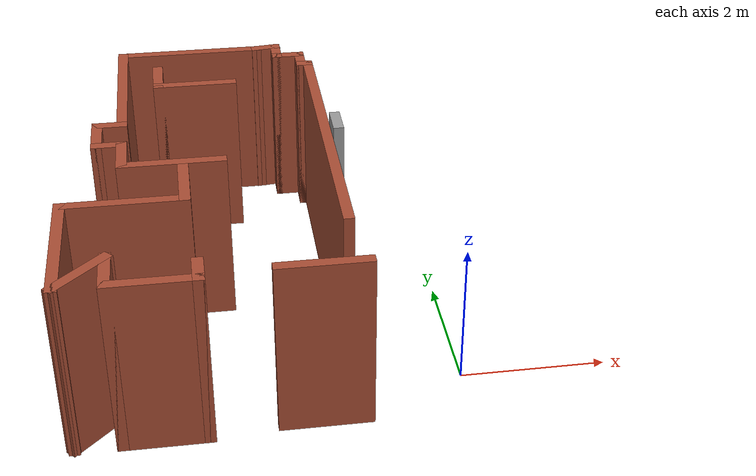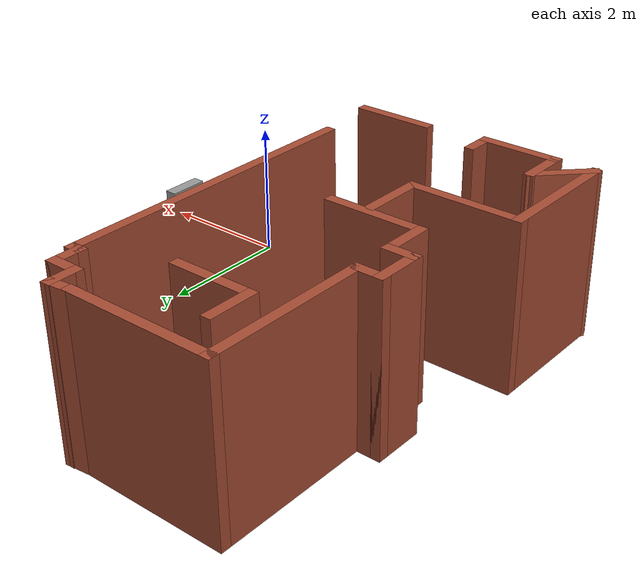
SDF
<sdf version="1.6">
 <model name="map_77">
  <link name="Wall_0">
   <pose>-3.30096 5.5702 0 0 -0 3.14159</pose>
   <visual name="Wall_0_Visual">
    <pose>0 0 1.25 0 -0 0</pose>
    <geometry><box><size>2.25 0.15 2.5</size></box></geometry>
    <material>
     <script><uri>file://media/materials/scripts/gazebo.material</uri><name>Gazebo/Bricks</name></script>
     <ambient>1 1 1 1</ambient>
     <shader type="pixel"/>
    </material>
    <meta><layer>0</layer></meta>
   </visual>
   <collision name="Wall_0_Collision">
    <pose>0 0 1.25 0 -0 0</pose>
    <geometry><box><size>2.25 0.15 2.5</size></box></geometry>
    <surface>
     <friction>
      <ode><mu>1</mu><mu2>1</mu2><fdir1>0 0 0</fdir1><slip1>0</slip1><slip2>0</slip2></ode>
      <torsional>
       <coefficient>1</coefficient>
       <patch_radius>0</patch_radius>
       <surface_radius>0</surface_radius>
       <use_patch_radius>1</use_patch_radius>
       <ode><slip>0</slip></ode>
      </torsional>
     </friction>
     <bounce><restitution_coefficient>0</restitution_coefficient><threshold>1e+06</threshold></bounce>
     <contact>
      <collide_without_contact>0</collide_without_contact>
      <collide_without_contact_bitmask>1</collide_without_contact_bitmask>
      <collide_bitmask>1</collide_bitmask>
      <ode>
       <soft_cfm>0</soft_cfm>
       <soft_erp>0.2</soft_erp>
       <kp>1e+13</kp>
       <kd>1</kd>
       <max_vel>0.01</max_vel>
       <min_depth>0</min_depth>
      </ode>
      <bullet>
       <split_impulse>1</split_impulse>
       <split_impulse_penetration_threshold>-0.01</split_impulse_penetration_threshold>
       <soft_cfm>0</soft_cfm>
       <soft_erp>0.2</soft_erp>
       <kp>1e+13</kp>
       <kd>1</kd>
      </bullet>
     </contact>
    </surface>
   </collision>
  </link>
  <link name="Wall_1">
   <pose>-4.35096 4.3952 0 0 0 -1.5708</pose>
   <visual name="Wall_1_Visual">
    <pose>0 0 1.25 0 -0 0</pose>
    <geometry><box><size>2.5 0.15 2.5</size></box></geometry>
    <material>
     <script><uri>file://media/materials/scripts/gazebo.material</uri><name>Gazebo/Bricks</name></script>
     <ambient>1 1 1 1</ambient>
     <shader type="pixel"/>
    </material>
    <meta><layer>0</layer></meta>
   </visual>
   <collision name="Wall_1_Collision">
    <pose>0 0 1.25 0 -0 0</pose>
    <geometry><box><size>2.5 0.15 2.5</size></box></geometry>
    <surface>
     <friction>
      <ode><mu>1</mu><mu2>1</mu2><fdir1>0 0 0</fdir1><slip1>0</slip1><slip2>0</slip2></ode>
      <torsional>
       <coefficient>1</coefficient>
       <patch_radius>0</patch_radius>
       <surface_radius>0</surface_radius>
       <use_patch_radius>1</use_patch_radius>
       <ode><slip>0</slip></ode>
      </torsional>
     </friction>
     <bounce><restitution_coefficient>0</restitution_coefficient><threshold>1e+06</threshold></bounce>
     <contact>
      <collide_without_contact>0</collide_without_contact>
      <collide_without_contact_bitmask>1</collide_without_contact_bitmask>
      <collide_bitmask>1</collide_bitmask>
      <ode>
       <soft_cfm>0</soft_cfm>
       <soft_erp>0.2</soft_erp>
       <kp>1e+13</kp>
       <kd>1</kd>
       <max_vel>0.01</max_vel>
       <min_depth>0</min_depth>
      </ode>
      <bullet>
       <split_impulse>1</split_impulse>
       <split_impulse_penetration_threshold>-0.01</split_impulse_penetration_threshold>
       <soft_cfm>0</soft_cfm>
       <soft_erp>0.2</soft_erp>
       <kp>1e+13</kp>
       <kd>1</kd>
      </bullet>
     </contact>
    </surface>
   </collision>
  </link>
  <link name="Wall_10">
   <pose>-5.12777 0.124368 0 0 0 -1.5708</pose>
   <visual name="Wall_10_Visual">
    <pose>0 0 1.25 0 -0 0</pose>
    <geometry><box><size>2 0.15 2.5</size></box></geometry>
    <material>
     <script><uri>file://media/materials/scripts/gazebo.material</uri><name>Gazebo/Bricks</name></script>
     <ambient>1 1 1 1</ambient>
     <shader type="pixel"/>
    </material>
    <meta><layer>0</layer></meta>
   </visual>
   <collision name="Wall_10_Collision">
    <pose>0 0 1.25 0 -0 0</pose>
    <geometry><box><size>2 0.15 2.5</size></box></geometry>
    <surface>
     <friction>
      <ode><mu>1</mu><mu2>1</mu2><fdir1>0 0 0</fdir1><slip1>0</slip1><slip2>0</slip2></ode>
      <torsional>
       <coefficient>1</coefficient>
       <patch_radius>0</patch_radius>
       <surface_radius>0</surface_radius>
       <use_patch_radius>1</use_patch_radius>
       <ode><slip>0</slip></ode>
      </torsional>
     </friction>
     <bounce><restitution_coefficient>0</restitution_coefficient><threshold>1e+06</threshold></bounce>
     <contact>
      <collide_without_contact>0</collide_without_contact>
      <collide_without_contact_bitmask>1</collide_without_contact_bitmask>
      <collide_bitmask>1</collide_bitmask>
      <ode>
       <soft_cfm>0</soft_cfm>
       <soft_erp>0.2</soft_erp>
       <kp>1e+13</kp>
       <kd>1</kd>
       <max_vel>0.01</max_vel>
       <min_depth>0</min_depth>
      </ode>
      <bullet>
       <split_impulse>1</split_impulse>
       <split_impulse_penetration_threshold>-0.01</split_impulse_penetration_threshold>
       <soft_cfm>0</soft_cfm>
       <soft_erp>0.2</soft_erp>
       <kp>1e+13</kp>
       <kd>1</kd>
      </bullet>
     </contact>
    </surface>
   </collision>
  </link>
  <link name="Wall_102">
   <pose>-1.30264 2.91805 0 0 0 -1.5708</pose>
   <visual name="Wall_102_Visual">
    <pose>0 0 1.25 0 -0 0</pose>
    <geometry><box><size>0.5 0.15 2.5</size></box></geometry>
    <material>
     <script><uri>file://media/materials/scripts/gazebo.material</uri><name>Gazebo/Grey</name></script>
     <ambient>1 1 1 1</ambient>
     <shader type="pixel"/>
    </material>
    <meta><layer>0</layer></meta>
   </visual>
   <collision name="Wall_102_Collision">
    <pose>0 0 1.25 0 -0 0</pose>
    <geometry><box><size>0.5 0.15 2.5</size></box></geometry>
    <surface>
     <friction>
      <ode><mu>1</mu><mu2>1</mu2><fdir1>0 0 0</fdir1><slip1>0</slip1><slip2>0</slip2></ode>
      <torsional>
       <coefficient>1</coefficient>
       <patch_radius>0</patch_radius>
       <surface_radius>0</surface_radius>
       <use_patch_radius>1</use_patch_radius>
       <ode><slip>0</slip></ode>
      </torsional>
     </friction>
     <bounce><restitution_coefficient>0</restitution_coefficient><threshold>1e+06</threshold></bounce>
     <contact>
      <collide_without_contact>0</collide_without_contact>
      <collide_without_contact_bitmask>1</collide_without_contact_bitmask>
      <collide_bitmask>1</collide_bitmask>
      <ode>
       <soft_cfm>0</soft_cfm>
       <soft_erp>0.2</soft_erp>
       <kp>1e+13</kp>
       <kd>1</kd>
       <max_vel>0.01</max_vel>
       <min_depth>0</min_depth>
      </ode>
      <bullet>
       <split_impulse>1</split_impulse>
       <split_impulse_penetration_threshold>-0.01</split_impulse_penetration_threshold>
       <soft_cfm>0</soft_cfm>
       <soft_erp>0.2</soft_erp>
       <kp>1e+13</kp>
       <kd>1</kd>
      </bullet>
     </contact>
    </surface>
   </collision>
  </link>
  <link name="Wall_11">
   <pose>-4.82725 -0.500111 0 0 -0 0.785398</pose>
   <visual name="Wall_11_Visual">
    <pose>0 0 1.25 0 -0 0</pose>
    <geometry><box><size>1 0.15 2.5</size></box></geometry>
    <material>
     <script><uri>file://media/materials/scripts/gazebo.material</uri><name>Gazebo/Bricks</name></script>
     <ambient>1 1 1 1</ambient>
     <shader type="pixel"/>
    </material>
    <meta><layer>0</layer></meta>
   </visual>
   <collision name="Wall_11_Collision">
    <pose>0 0 1.25 0 -0 0</pose>
    <geometry><box><size>1 0.15 2.5</size></box></geometry>
    <surface>
     <friction>
      <ode><mu>1</mu><mu2>1</mu2><fdir1>0 0 0</fdir1><slip1>0</slip1><slip2>0</slip2></ode>
      <torsional>
       <coefficient>1</coefficient>
       <patch_radius>0</patch_radius>
       <surface_radius>0</surface_radius>
       <use_patch_radius>1</use_patch_radius>
       <ode><slip>0</slip></ode>
      </torsional>
     </friction>
     <bounce><restitution_coefficient>0</restitution_coefficient><threshold>1e+06</threshold></bounce>
     <contact>
      <collide_without_contact>0</collide_without_contact>
      <collide_without_contact_bitmask>1</collide_without_contact_bitmask>
      <collide_bitmask>1</collide_bitmask>
      <ode>
       <soft_cfm>0</soft_cfm>
       <soft_erp>0.2</soft_erp>
       <kp>1e+13</kp>
       <kd>1</kd>
       <max_vel>0.01</max_vel>
       <min_depth>0</min_depth>
      </ode>
      <bullet>
       <split_impulse>1</split_impulse>
       <split_impulse_penetration_threshold>-0.01</split_impulse_penetration_threshold>
       <soft_cfm>0</soft_cfm>
       <soft_erp>0.2</soft_erp>
       <kp>1e+13</kp>
       <kd>1</kd>
      </bullet>
     </contact>
    </surface>
   </collision>
  </link>
  <link name="Wall_114">
   <pose>-1.49601 2.60408 0 0 -0 1.5708</pose>
   <visual name="Wall_114_Visual">
    <pose>0 0 1.25 0 -0 0</pose>
    <geometry><box><size>4.75 0.15 2.5</size></box></geometry>
    <material>
     <script><uri>file://media/materials/scripts/gazebo.material</uri><name>Gazebo/Bricks</name></script>
     <ambient>1 1 1 1</ambient>
     <shader type="pixel"/>
    </material>
    <meta><layer>0</layer></meta>
   </visual>
   <collision name="Wall_114_Collision">
    <pose>0 0 1.25 0 -0 0</pose>
    <geometry><box><size>4.75 0.15 2.5</size></box></geometry>
    <surface>
     <friction>
      <ode><mu>1</mu><mu2>1</mu2><fdir1>0 0 0</fdir1><slip1>0</slip1><slip2>0</slip2></ode>
      <torsional>
       <coefficient>1</coefficient>
       <patch_radius>0</patch_radius>
       <surface_radius>0</surface_radius>
       <use_patch_radius>1</use_patch_radius>
       <ode><slip>0</slip></ode>
      </torsional>
     </friction>
     <bounce><restitution_coefficient>0</restitution_coefficient><threshold>1e+06</threshold></bounce>
     <contact>
      <collide_without_contact>0</collide_without_contact>
      <collide_without_contact_bitmask>1</collide_without_contact_bitmask>
      <collide_bitmask>1</collide_bitmask>
      <ode>
       <soft_cfm>0</soft_cfm>
       <soft_erp>0.2</soft_erp>
       <kp>1e+13</kp>
       <kd>1</kd>
       <max_vel>0.01</max_vel>
       <min_depth>0</min_depth>
      </ode>
      <bullet>
       <split_impulse>1</split_impulse>
       <split_impulse_penetration_threshold>-0.01</split_impulse_penetration_threshold>
       <soft_cfm>0</soft_cfm>
       <soft_erp>0.2</soft_erp>
       <kp>1e+13</kp>
       <kd>1</kd>
      </bullet>
     </contact>
    </surface>
   </collision>
  </link>
  <link name="Wall_115">
   <pose>-1.54601 4.90408 0 0 -0 3.14159</pose>
   <visual name="Wall_115_Visual">
    <pose>0 0 1.25 0 -0 0</pose>
    <geometry><box><size>0.25 0.15 2.5</size></box></geometry>
    <material>
     <script><uri>file://media/materials/scripts/gazebo.material</uri><name>Gazebo/Bricks</name></script>
     <ambient>1 1 1 1</ambient>
     <shader type="pixel"/>
    </material>
    <meta><layer>0</layer></meta>
   </visual>
   <collision name="Wall_115_Collision">
    <pose>0 0 1.25 0 -0 0</pose>
    <geometry><box><size>0.25 0.15 2.5</size></box></geometry>
    <surface>
     <friction>
      <ode><mu>1</mu><mu2>1</mu2><fdir1>0 0 0</fdir1><slip1>0</slip1><slip2>0</slip2></ode>
      <torsional>
       <coefficient>1</coefficient>
       <patch_radius>0</patch_radius>
       <surface_radius>0</surface_radius>
       <use_patch_radius>1</use_patch_radius>
       <ode><slip>0</slip></ode>
      </torsional>
     </friction>
     <bounce><restitution_coefficient>0</restitution_coefficient><threshold>1e+06</threshold></bounce>
     <contact>
      <collide_without_contact>0</collide_without_contact>
      <collide_without_contact_bitmask>1</collide_without_contact_bitmask>
      <collide_bitmask>1</collide_bitmask>
      <ode>
       <soft_cfm>0</soft_cfm>
       <soft_erp>0.2</soft_erp>
       <kp>1e+13</kp>
       <kd>1</kd>
       <max_vel>0.01</max_vel>
       <min_depth>0</min_depth>
      </ode>
      <bullet>
       <split_impulse>1</split_impulse>
       <split_impulse_penetration_threshold>-0.01</split_impulse_penetration_threshold>
       <soft_cfm>0</soft_cfm>
       <soft_erp>0.2</soft_erp>
       <kp>1e+13</kp>
       <kd>1</kd>
      </bullet>
     </contact>
    </surface>
   </collision>
  </link>
  <link name="Wall_116">
   <pose>-1.59601 5.07908 0 0 -0 1.5708</pose>
   <visual name="Wall_116_Visual">
    <pose>0 0 1.25 0 -0 0</pose>
    <geometry><box><size>0.5 0.15 2.5</size></box></geometry>
    <material>
     <script><uri>file://media/materials/scripts/gazebo.material</uri><name>Gazebo/Bricks</name></script>
     <ambient>1 1 1 1</ambient>
     <shader type="pixel"/>
    </material>
    <meta><layer>0</layer></meta>
   </visual>
   <collision name="Wall_116_Collision">
    <pose>0 0 1.25 0 -0 0</pose>
    <geometry><box><size>0.5 0.15 2.5</size></box></geometry>
    <surface>
     <friction>
      <ode><mu>1</mu><mu2>1</mu2><fdir1>0 0 0</fdir1><slip1>0</slip1><slip2>0</slip2></ode>
      <torsional>
       <coefficient>1</coefficient>
       <patch_radius>0</patch_radius>
       <surface_radius>0</surface_radius>
       <use_patch_radius>1</use_patch_radius>
       <ode><slip>0</slip></ode>
      </torsional>
     </friction>
     <bounce><restitution_coefficient>0</restitution_coefficient><threshold>1e+06</threshold></bounce>
     <contact>
      <collide_without_contact>0</collide_without_contact>
      <collide_without_contact_bitmask>1</collide_without_contact_bitmask>
      <collide_bitmask>1</collide_bitmask>
      <ode>
       <soft_cfm>0</soft_cfm>
       <soft_erp>0.2</soft_erp>
       <kp>1e+13</kp>
       <kd>1</kd>
       <max_vel>0.01</max_vel>
       <min_depth>0</min_depth>
      </ode>
      <bullet>
       <split_impulse>1</split_impulse>
       <split_impulse_penetration_threshold>-0.01</split_impulse_penetration_threshold>
       <soft_cfm>0</soft_cfm>
       <soft_erp>0.2</soft_erp>
       <kp>1e+13</kp>
       <kd>1</kd>
      </bullet>
     </contact>
    </surface>
   </collision>
  </link>
  <link name="Wall_117">
   <pose>-1.77101 5.25408 0 0 -0 3.14159</pose>
   <visual name="Wall_117_Visual">
    <pose>0 0 1.25 0 -0 0</pose>
    <geometry><box><size>0.5 0.15 2.5</size></box></geometry>
    <material>
     <script><uri>file://media/materials/scripts/gazebo.material</uri><name>Gazebo/Bricks</name></script>
     <ambient>1 1 1 1</ambient>
     <shader type="pixel"/>
    </material>
    <meta><layer>0</layer></meta>
   </visual>
   <collision name="Wall_117_Collision">
    <pose>0 0 1.25 0 -0 0</pose>
    <geometry><box><size>0.5 0.15 2.5</size></box></geometry>
    <surface>
     <friction>
      <ode><mu>1</mu><mu2>1</mu2><fdir1>0 0 0</fdir1><slip1>0</slip1><slip2>0</slip2></ode>
      <torsional>
       <coefficient>1</coefficient>
       <patch_radius>0</patch_radius>
       <surface_radius>0</surface_radius>
       <use_patch_radius>1</use_patch_radius>
       <ode><slip>0</slip></ode>
      </torsional>
     </friction>
     <bounce><restitution_coefficient>0</restitution_coefficient><threshold>1e+06</threshold></bounce>
     <contact>
      <collide_without_contact>0</collide_without_contact>
      <collide_without_contact_bitmask>1</collide_without_contact_bitmask>
      <collide_bitmask>1</collide_bitmask>
      <ode>
       <soft_cfm>0</soft_cfm>
       <soft_erp>0.2</soft_erp>
       <kp>1e+13</kp>
       <kd>1</kd>
       <max_vel>0.01</max_vel>
       <min_depth>0</min_depth>
      </ode>
      <bullet>
       <split_impulse>1</split_impulse>
       <split_impulse_penetration_threshold>-0.01</split_impulse_penetration_threshold>
       <soft_cfm>0</soft_cfm>
       <soft_erp>0.2</soft_erp>
       <kp>1e+13</kp>
       <kd>1</kd>
      </bullet>
     </contact>
    </surface>
   </collision>
  </link>
  <link name="Wall_118">
   <pose>-1.94601 5.42908 0 0 -0 1.5708</pose>
   <visual name="Wall_118_Visual">
    <pose>0 0 1.25 0 -0 0</pose>
    <geometry><box><size>0.5 0.15 2.5</size></box></geometry>
    <material>
     <script><uri>file://media/materials/scripts/gazebo.material</uri><name>Gazebo/Bricks</name></script>
     <ambient>1 1 1 1</ambient>
     <shader type="pixel"/>
    </material>
    <meta><layer>0</layer></meta>
   </visual>
   <collision name="Wall_118_Collision">
    <pose>0 0 1.25 0 -0 0</pose>
    <geometry><box><size>0.5 0.15 2.5</size></box></geometry>
    <surface>
     <friction>
      <ode><mu>1</mu><mu2>1</mu2><fdir1>0 0 0</fdir1><slip1>0</slip1><slip2>0</slip2></ode>
      <torsional>
       <coefficient>1</coefficient>
       <patch_radius>0</patch_radius>
       <surface_radius>0</surface_radius>
       <use_patch_radius>1</use_patch_radius>
       <ode><slip>0</slip></ode>
      </torsional>
     </friction>
     <bounce><restitution_coefficient>0</restitution_coefficient><threshold>1e+06</threshold></bounce>
     <contact>
      <collide_without_contact>0</collide_without_contact>
      <collide_without_contact_bitmask>1</collide_without_contact_bitmask>
      <collide_bitmask>1</collide_bitmask>
      <ode>
       <soft_cfm>0</soft_cfm>
       <soft_erp>0.2</soft_erp>
       <kp>1e+13</kp>
       <kd>1</kd>
       <max_vel>0.01</max_vel>
       <min_depth>0</min_depth>
      </ode>
      <bullet>
       <split_impulse>1</split_impulse>
       <split_impulse_penetration_threshold>-0.01</split_impulse_penetration_threshold>
       <soft_cfm>0</soft_cfm>
       <soft_erp>0.2</soft_erp>
       <kp>1e+13</kp>
       <kd>1</kd>
      </bullet>
     </contact>
    </surface>
   </collision>
  </link>
  <link name="Wall_119">
   <pose>-2.09848 5.58714 0 0 0 -3.03092</pose>
   <visual name="Wall_119_Visual">
    <pose>0 0 1.25 0 -0 0</pose>
    <geometry><box><size>0.456827 0.15 2.5</size></box></geometry>
    <material>
     <script><uri>file://media/materials/scripts/gazebo.material</uri><name>Gazebo/Bricks</name></script>
     <ambient>1 1 1 1</ambient>
     <shader type="pixel"/>
    </material>
    <meta><layer>0</layer></meta>
   </visual>
   <collision name="Wall_119_Collision">
    <pose>0 0 1.25 0 -0 0</pose>
    <geometry><box><size>0.456827 0.15 2.5</size></box></geometry>
    <surface>
     <friction>
      <ode><mu>1</mu><mu2>1</mu2><fdir1>0 0 0</fdir1><slip1>0</slip1><slip2>0</slip2></ode>
      <torsional>
       <coefficient>1</coefficient>
       <patch_radius>0</patch_radius>
       <surface_radius>0</surface_radius>
       <use_patch_radius>1</use_patch_radius>
       <ode><slip>0</slip></ode>
      </torsional>
     </friction>
     <bounce><restitution_coefficient>0</restitution_coefficient><threshold>1e+06</threshold></bounce>
     <contact>
      <collide_without_contact>0</collide_without_contact>
      <collide_without_contact_bitmask>1</collide_without_contact_bitmask>
      <collide_bitmask>1</collide_bitmask>
      <ode>
       <soft_cfm>0</soft_cfm>
       <soft_erp>0.2</soft_erp>
       <kp>1e+13</kp>
       <kd>1</kd>
       <max_vel>0.01</max_vel>
       <min_depth>0</min_depth>
      </ode>
      <bullet>
       <split_impulse>1</split_impulse>
       <split_impulse_penetration_threshold>-0.01</split_impulse_penetration_threshold>
       <soft_cfm>0</soft_cfm>
       <soft_erp>0.2</soft_erp>
       <kp>1e+13</kp>
       <kd>1</kd>
      </bullet>
     </contact>
    </surface>
   </collision>
  </link>
  <link name="Wall_12">
   <pose>-4.52673 -0.499591 0 0 0 -1.5708</pose>
   <visual name="Wall_12_Visual">
    <pose>0 0 1.25 0 -0 0</pose>
    <geometry><box><size>0.75 0.15 2.5</size></box></geometry>
    <material>
     <script><uri>file://media/materials/scripts/gazebo.material</uri><name>Gazebo/Bricks</name></script>
     <ambient>1 1 1 1</ambient>
     <shader type="pixel"/>
    </material>
    <meta><layer>0</layer></meta>
   </visual>
   <collision name="Wall_12_Collision">
    <pose>0 0 1.25 0 -0 0</pose>
    <geometry><box><size>0.75 0.15 2.5</size></box></geometry>
    <surface>
     <friction>
      <ode><mu>1</mu><mu2>1</mu2><fdir1>0 0 0</fdir1><slip1>0</slip1><slip2>0</slip2></ode>
      <torsional>
       <coefficient>1</coefficient>
       <patch_radius>0</patch_radius>
       <surface_radius>0</surface_radius>
       <use_patch_radius>1</use_patch_radius>
       <ode><slip>0</slip></ode>
      </torsional>
     </friction>
     <bounce><restitution_coefficient>0</restitution_coefficient><threshold>1e+06</threshold></bounce>
     <contact>
      <collide_without_contact>0</collide_without_contact>
      <collide_without_contact_bitmask>1</collide_without_contact_bitmask>
      <collide_bitmask>1</collide_bitmask>
      <ode>
       <soft_cfm>0</soft_cfm>
       <soft_erp>0.2</soft_erp>
       <kp>1e+13</kp>
       <kd>1</kd>
       <max_vel>0.01</max_vel>
       <min_depth>0</min_depth>
      </ode>
      <bullet>
       <split_impulse>1</split_impulse>
       <split_impulse_penetration_threshold>-0.01</split_impulse_penetration_threshold>
       <soft_cfm>0</soft_cfm>
       <soft_erp>0.2</soft_erp>
       <kp>1e+13</kp>
       <kd>1</kd>
      </bullet>
     </contact>
    </surface>
   </collision>
  </link>
  <link name="Wall_121">
   <pose>-3.82037 4.71159 0 0 0 -1.5708</pose>
   <visual name="Wall_121_Visual">
    <pose>0 0 1.25 0 -0 0</pose>
    <geometry><box><size>0.75 0.15 2.5</size></box></geometry>
    <material>
     <script><uri>file://media/materials/scripts/gazebo.material</uri><name>Gazebo/Bricks</name></script>
     <ambient>1 1 1 1</ambient>
     <shader type="pixel"/>
    </material>
    <meta><layer>0</layer></meta>
   </visual>
   <collision name="Wall_121_Collision">
    <pose>0 0 1.25 0 -0 0</pose>
    <geometry><box><size>0.75 0.15 2.5</size></box></geometry>
    <surface>
     <friction>
      <ode><mu>1</mu><mu2>1</mu2><fdir1>0 0 0</fdir1><slip1>0</slip1><slip2>0</slip2></ode>
      <torsional>
       <coefficient>1</coefficient>
       <patch_radius>0</patch_radius>
       <surface_radius>0</surface_radius>
       <use_patch_radius>1</use_patch_radius>
       <ode><slip>0</slip></ode>
      </torsional>
     </friction>
     <bounce><restitution_coefficient>0</restitution_coefficient><threshold>1e+06</threshold></bounce>
     <contact>
      <collide_without_contact>0</collide_without_contact>
      <collide_without_contact_bitmask>1</collide_without_contact_bitmask>
      <collide_bitmask>1</collide_bitmask>
      <ode>
       <soft_cfm>0</soft_cfm>
       <soft_erp>0.2</soft_erp>
       <kp>1e+13</kp>
       <kd>1</kd>
       <max_vel>0.01</max_vel>
       <min_depth>0</min_depth>
      </ode>
      <bullet>
       <split_impulse>1</split_impulse>
       <split_impulse_penetration_threshold>-0.01</split_impulse_penetration_threshold>
       <soft_cfm>0</soft_cfm>
       <soft_erp>0.2</soft_erp>
       <kp>1e+13</kp>
       <kd>1</kd>
      </bullet>
     </contact>
    </surface>
   </collision>
  </link>
  <link name="Wall_122">
   <pose>-3.27037 4.41159 0 0 -0 0</pose>
   <visual name="Wall_122_Visual">
    <pose>0 0 1.25 0 -0 0</pose>
    <geometry><box><size>1.25 0.15 2.5</size></box></geometry>
    <material>
     <script><uri>file://media/materials/scripts/gazebo.material</uri><name>Gazebo/Bricks</name></script>
     <ambient>1 1 1 1</ambient>
     <shader type="pixel"/>
    </material>
    <meta><layer>0</layer></meta>
   </visual>
   <collision name="Wall_122_Collision">
    <pose>0 0 1.25 0 -0 0</pose>
    <geometry><box><size>1.25 0.15 2.5</size></box></geometry>
    <surface>
     <friction>
      <ode><mu>1</mu><mu2>1</mu2><fdir1>0 0 0</fdir1><slip1>0</slip1><slip2>0</slip2></ode>
      <torsional>
       <coefficient>1</coefficient>
       <patch_radius>0</patch_radius>
       <surface_radius>0</surface_radius>
       <use_patch_radius>1</use_patch_radius>
       <ode><slip>0</slip></ode>
      </torsional>
     </friction>
     <bounce><restitution_coefficient>0</restitution_coefficient><threshold>1e+06</threshold></bounce>
     <contact>
      <collide_without_contact>0</collide_without_contact>
      <collide_without_contact_bitmask>1</collide_without_contact_bitmask>
      <collide_bitmask>1</collide_bitmask>
      <ode>
       <soft_cfm>0</soft_cfm>
       <soft_erp>0.2</soft_erp>
       <kp>1e+13</kp>
       <kd>1</kd>
       <max_vel>0.01</max_vel>
       <min_depth>0</min_depth>
      </ode>
      <bullet>
       <split_impulse>1</split_impulse>
       <split_impulse_penetration_threshold>-0.01</split_impulse_penetration_threshold>
       <soft_cfm>0</soft_cfm>
       <soft_erp>0.2</soft_erp>
       <kp>1e+13</kp>
       <kd>1</kd>
      </bullet>
     </contact>
    </surface>
   </collision>
  </link>
  <link name="Wall_15">
   <pose>-3.97673 -0.799591 0 0 -0 0</pose>
   <visual name="Wall_15_Visual">
    <pose>0 0 1.25 0 -0 0</pose>
    <geometry><box><size>1.25 0.15 2.5</size></box></geometry>
    <material>
     <script><uri>file://media/materials/scripts/gazebo.material</uri><name>Gazebo/Bricks</name></script>
     <ambient>1 1 1 1</ambient>
     <shader type="pixel"/>
    </material>
    <meta><layer>0</layer></meta>
   </visual>
   <collision name="Wall_15_Collision">
    <pose>0 0 1.25 0 -0 0</pose>
    <geometry><box><size>1.25 0.15 2.5</size></box></geometry>
    <surface>
     <friction>
      <ode><mu>1</mu><mu2>1</mu2><fdir1>0 0 0</fdir1><slip1>0</slip1><slip2>0</slip2></ode>
      <torsional>
       <coefficient>1</coefficient>
       <patch_radius>0</patch_radius>
       <surface_radius>0</surface_radius>
       <use_patch_radius>1</use_patch_radius>
       <ode><slip>0</slip></ode>
      </torsional>
     </friction>
     <bounce><restitution_coefficient>0</restitution_coefficient><threshold>1e+06</threshold></bounce>
     <contact>
      <collide_without_contact>0</collide_without_contact>
      <collide_without_contact_bitmask>1</collide_without_contact_bitmask>
      <collide_bitmask>1</collide_bitmask>
      <ode>
       <soft_cfm>0</soft_cfm>
       <soft_erp>0.2</soft_erp>
       <kp>1e+13</kp>
       <kd>1</kd>
       <max_vel>0.01</max_vel>
       <min_depth>0</min_depth>
      </ode>
      <bullet>
       <split_impulse>1</split_impulse>
       <split_impulse_penetration_threshold>-0.01</split_impulse_penetration_threshold>
       <soft_cfm>0</soft_cfm>
       <soft_erp>0.2</soft_erp>
       <kp>1e+13</kp>
       <kd>1</kd>
      </bullet>
     </contact>
    </surface>
   </collision>
  </link>
  <link name="Wall_16">
   <pose>-3.42673 -0.624591 0 0 -0 1.5708</pose>
   <visual name="Wall_16_Visual">
    <pose>0 0 1.25 0 -0 0</pose>
    <geometry><box><size>0.5 0.15 2.5</size></box></geometry>
    <material>
     <script><uri>file://media/materials/scripts/gazebo.material</uri><name>Gazebo/Bricks</name></script>
     <ambient>1 1 1 1</ambient>
     <shader type="pixel"/>
    </material>
    <meta><layer>0</layer></meta>
   </visual>
   <collision name="Wall_16_Collision">
    <pose>0 0 1.25 0 -0 0</pose>
    <geometry><box><size>0.5 0.15 2.5</size></box></geometry>
    <surface>
     <friction>
      <ode><mu>1</mu><mu2>1</mu2><fdir1>0 0 0</fdir1><slip1>0</slip1><slip2>0</slip2></ode>
      <torsional>
       <coefficient>1</coefficient>
       <patch_radius>0</patch_radius>
       <surface_radius>0</surface_radius>
       <use_patch_radius>1</use_patch_radius>
       <ode><slip>0</slip></ode>
      </torsional>
     </friction>
     <bounce><restitution_coefficient>0</restitution_coefficient><threshold>1e+06</threshold></bounce>
     <contact>
      <collide_without_contact>0</collide_without_contact>
      <collide_without_contact_bitmask>1</collide_without_contact_bitmask>
      <collide_bitmask>1</collide_bitmask>
      <ode>
       <soft_cfm>0</soft_cfm>
       <soft_erp>0.2</soft_erp>
       <kp>1e+13</kp>
       <kd>1</kd>
       <max_vel>0.01</max_vel>
       <min_depth>0</min_depth>
      </ode>
      <bullet>
       <split_impulse>1</split_impulse>
       <split_impulse_penetration_threshold>-0.01</split_impulse_penetration_threshold>
       <soft_cfm>0</soft_cfm>
       <soft_erp>0.2</soft_erp>
       <kp>1e+13</kp>
       <kd>1</kd>
      </bullet>
     </contact>
    </surface>
   </collision>
  </link>
  <link name="Wall_2">
   <pose>-4.52596 3.2202 0 0 -0 3.14159</pose>
   <visual name="Wall_2_Visual">
    <pose>0 0 1.25 0 -0 0</pose>
    <geometry><box><size>0.5 0.15 2.5</size></box></geometry>
    <material>
     <script><uri>file://media/materials/scripts/gazebo.material</uri><name>Gazebo/Bricks</name></script>
     <ambient>1 1 1 1</ambient>
     <shader type="pixel"/>
    </material>
    <meta><layer>0</layer></meta>
   </visual>
   <collision name="Wall_2_Collision">
    <pose>0 0 1.25 0 -0 0</pose>
    <geometry><box><size>0.5 0.15 2.5</size></box></geometry>
    <surface>
     <friction>
      <ode><mu>1</mu><mu2>1</mu2><fdir1>0 0 0</fdir1><slip1>0</slip1><slip2>0</slip2></ode>
      <torsional>
       <coefficient>1</coefficient>
       <patch_radius>0</patch_radius>
       <surface_radius>0</surface_radius>
       <use_patch_radius>1</use_patch_radius>
       <ode><slip>0</slip></ode>
      </torsional>
     </friction>
     <bounce><restitution_coefficient>0</restitution_coefficient><threshold>1e+06</threshold></bounce>
     <contact>
      <collide_without_contact>0</collide_without_contact>
      <collide_without_contact_bitmask>1</collide_without_contact_bitmask>
      <collide_bitmask>1</collide_bitmask>
      <ode>
       <soft_cfm>0</soft_cfm>
       <soft_erp>0.2</soft_erp>
       <kp>1e+13</kp>
       <kd>1</kd>
       <max_vel>0.01</max_vel>
       <min_depth>0</min_depth>
      </ode>
      <bullet>
       <split_impulse>1</split_impulse>
       <split_impulse_penetration_threshold>-0.01</split_impulse_penetration_threshold>
       <soft_cfm>0</soft_cfm>
       <soft_erp>0.2</soft_erp>
       <kp>1e+13</kp>
       <kd>1</kd>
      </bullet>
     </contact>
    </surface>
   </collision>
  </link>
  <link name="Wall_23">
   <pose>-1.92673 -0.699591 0 0 -0 0</pose>
   <visual name="Wall_23_Visual">
    <pose>0 0 1.25 0 -0 0</pose>
    <geometry><box><size>1.25 0.15 2.5</size></box></geometry>
    <material>
     <script><uri>file://media/materials/scripts/gazebo.material</uri><name>Gazebo/Bricks</name></script>
     <ambient>1 1 1 1</ambient>
     <shader type="pixel"/>
    </material>
    <meta><layer>0</layer></meta>
   </visual>
   <collision name="Wall_23_Collision">
    <pose>0 0 1.25 0 -0 0</pose>
    <geometry><box><size>1.25 0.15 2.5</size></box></geometry>
    <surface>
     <friction>
      <ode><mu>1</mu><mu2>1</mu2><fdir1>0 0 0</fdir1><slip1>0</slip1><slip2>0</slip2></ode>
      <torsional>
       <coefficient>1</coefficient>
       <patch_radius>0</patch_radius>
       <surface_radius>0</surface_radius>
       <use_patch_radius>1</use_patch_radius>
       <ode><slip>0</slip></ode>
      </torsional>
     </friction>
     <bounce><restitution_coefficient>0</restitution_coefficient><threshold>1e+06</threshold></bounce>
     <contact>
      <collide_without_contact>0</collide_without_contact>
      <collide_without_contact_bitmask>1</collide_without_contact_bitmask>
      <collide_bitmask>1</collide_bitmask>
      <ode>
       <soft_cfm>0</soft_cfm>
       <soft_erp>0.2</soft_erp>
       <kp>1e+13</kp>
       <kd>1</kd>
       <max_vel>0.01</max_vel>
       <min_depth>0</min_depth>
      </ode>
      <bullet>
       <split_impulse>1</split_impulse>
       <split_impulse_penetration_threshold>-0.01</split_impulse_penetration_threshold>
       <soft_cfm>0</soft_cfm>
       <soft_erp>0.2</soft_erp>
       <kp>1e+13</kp>
       <kd>1</kd>
      </bullet>
     </contact>
    </surface>
   </collision>
  </link>
  <link name="Wall_3">
   <pose>-4.70096 2.9202 0 0 0 -1.5708</pose>
   <visual name="Wall_3_Visual">
    <pose>0 0 1.25 0 -0 0</pose>
    <geometry><box><size>0.75 0.15 2.5</size></box></geometry>
    <material>
     <script><uri>file://media/materials/scripts/gazebo.material</uri><name>Gazebo/Bricks</name></script>
     <ambient>1 1 1 1</ambient>
     <shader type="pixel"/>
    </material>
    <meta><layer>0</layer></meta>
   </visual>
   <collision name="Wall_3_Collision">
    <pose>0 0 1.25 0 -0 0</pose>
    <geometry><box><size>0.75 0.15 2.5</size></box></geometry>
    <surface>
     <friction>
      <ode><mu>1</mu><mu2>1</mu2><fdir1>0 0 0</fdir1><slip1>0</slip1><slip2>0</slip2></ode>
      <torsional>
       <coefficient>1</coefficient>
       <patch_radius>0</patch_radius>
       <surface_radius>0</surface_radius>
       <use_patch_radius>1</use_patch_radius>
       <ode><slip>0</slip></ode>
      </torsional>
     </friction>
     <bounce><restitution_coefficient>0</restitution_coefficient><threshold>1e+06</threshold></bounce>
     <contact>
      <collide_without_contact>0</collide_without_contact>
      <collide_without_contact_bitmask>1</collide_without_contact_bitmask>
      <collide_bitmask>1</collide_bitmask>
      <ode>
       <soft_cfm>0</soft_cfm>
       <soft_erp>0.2</soft_erp>
       <kp>1e+13</kp>
       <kd>1</kd>
       <max_vel>0.01</max_vel>
       <min_depth>0</min_depth>
      </ode>
      <bullet>
       <split_impulse>1</split_impulse>
       <split_impulse_penetration_threshold>-0.01</split_impulse_penetration_threshold>
       <soft_cfm>0</soft_cfm>
       <soft_erp>0.2</soft_erp>
       <kp>1e+13</kp>
       <kd>1</kd>
      </bullet>
     </contact>
    </surface>
   </collision>
  </link>
  <link name="Wall_4">
   <pose>-4.52596 2.6202 0 0 -0 0</pose>
   <visual name="Wall_4_Visual">
    <pose>0 0 1.25 0 -0 0</pose>
    <geometry><box><size>0.5 0.15 2.5</size></box></geometry>
    <material>
     <script><uri>file://media/materials/scripts/gazebo.material</uri><name>Gazebo/Bricks</name></script>
     <ambient>1 1 1 1</ambient>
     <shader type="pixel"/>
    </material>
    <meta><layer>0</layer></meta>
   </visual>
   <collision name="Wall_4_Collision">
    <pose>0 0 1.25 0 -0 0</pose>
    <geometry><box><size>0.5 0.15 2.5</size></box></geometry>
    <surface>
     <friction>
      <ode><mu>1</mu><mu2>1</mu2><fdir1>0 0 0</fdir1><slip1>0</slip1><slip2>0</slip2></ode>
      <torsional>
       <coefficient>1</coefficient>
       <patch_radius>0</patch_radius>
       <surface_radius>0</surface_radius>
       <use_patch_radius>1</use_patch_radius>
       <ode><slip>0</slip></ode>
      </torsional>
     </friction>
     <bounce><restitution_coefficient>0</restitution_coefficient><threshold>1e+06</threshold></bounce>
     <contact>
      <collide_without_contact>0</collide_without_contact>
      <collide_without_contact_bitmask>1</collide_without_contact_bitmask>
      <collide_bitmask>1</collide_bitmask>
      <ode>
       <soft_cfm>0</soft_cfm>
       <soft_erp>0.2</soft_erp>
       <kp>1e+13</kp>
       <kd>1</kd>
       <max_vel>0.01</max_vel>
       <min_depth>0</min_depth>
      </ode>
      <bullet>
       <split_impulse>1</split_impulse>
       <split_impulse_penetration_threshold>-0.01</split_impulse_penetration_threshold>
       <soft_cfm>0</soft_cfm>
       <soft_erp>0.2</soft_erp>
       <kp>1e+13</kp>
       <kd>1</kd>
      </bullet>
     </contact>
    </surface>
   </collision>
  </link>
  <link name="Wall_5">
   <pose>-4.35096 2.3202 0 0 0 -1.5708</pose>
   <visual name="Wall_5_Visual">
    <pose>0 0 1.25 0 -0 0</pose>
    <geometry><box><size>0.75 0.15 2.5</size></box></geometry>
    <material>
     <script><uri>file://media/materials/scripts/gazebo.material</uri><name>Gazebo/Bricks</name></script>
     <ambient>1 1 1 1</ambient>
     <shader type="pixel"/>
    </material>
    <meta><layer>0</layer></meta>
   </visual>
   <collision name="Wall_5_Collision">
    <pose>0 0 1.25 0 -0 0</pose>
    <geometry><box><size>0.75 0.15 2.5</size></box></geometry>
    <surface>
     <friction>
      <ode><mu>1</mu><mu2>1</mu2><fdir1>0 0 0</fdir1><slip1>0</slip1><slip2>0</slip2></ode>
      <torsional>
       <coefficient>1</coefficient>
       <patch_radius>0</patch_radius>
       <surface_radius>0</surface_radius>
       <use_patch_radius>1</use_patch_radius>
       <ode><slip>0</slip></ode>
      </torsional>
     </friction>
     <bounce><restitution_coefficient>0</restitution_coefficient><threshold>1e+06</threshold></bounce>
     <contact>
      <collide_without_contact>0</collide_without_contact>
      <collide_without_contact_bitmask>1</collide_without_contact_bitmask>
      <collide_bitmask>1</collide_bitmask>
      <ode>
       <soft_cfm>0</soft_cfm>
       <soft_erp>0.2</soft_erp>
       <kp>1e+13</kp>
       <kd>1</kd>
       <max_vel>0.01</max_vel>
       <min_depth>0</min_depth>
      </ode>
      <bullet>
       <split_impulse>1</split_impulse>
       <split_impulse_penetration_threshold>-0.01</split_impulse_penetration_threshold>
       <soft_cfm>0</soft_cfm>
       <soft_erp>0.2</soft_erp>
       <kp>1e+13</kp>
       <kd>1</kd>
      </bullet>
     </contact>
    </surface>
   </collision>
  </link>
  <link name="Wall_6">
   <pose>-3.67596 2.0202 0 0 -0 0</pose>
   <visual name="Wall_6_Visual">
    <pose>0 0 1.25 0 -0 0</pose>
    <geometry><box><size>1.5 0.15 2.5</size></box></geometry>
    <material>
     <script><uri>file://media/materials/scripts/gazebo.material</uri><name>Gazebo/Bricks</name></script>
     <ambient>1 1 1 1</ambient>
     <shader type="pixel"/>
    </material>
    <meta><layer>0</layer></meta>
   </visual>
   <collision name="Wall_6_Collision">
    <pose>0 0 1.25 0 -0 0</pose>
    <geometry><box><size>1.5 0.15 2.5</size></box></geometry>
    <surface>
     <friction>
      <ode><mu>1</mu><mu2>1</mu2><fdir1>0 0 0</fdir1><slip1>0</slip1><slip2>0</slip2></ode>
      <torsional>
       <coefficient>1</coefficient>
       <patch_radius>0</patch_radius>
       <surface_radius>0</surface_radius>
       <use_patch_radius>1</use_patch_radius>
       <ode><slip>0</slip></ode>
      </torsional>
     </friction>
     <bounce><restitution_coefficient>0</restitution_coefficient><threshold>1e+06</threshold></bounce>
     <contact>
      <collide_without_contact>0</collide_without_contact>
      <collide_without_contact_bitmask>1</collide_without_contact_bitmask>
      <collide_bitmask>1</collide_bitmask>
      <ode>
       <soft_cfm>0</soft_cfm>
       <soft_erp>0.2</soft_erp>
       <kp>1e+13</kp>
       <kd>1</kd>
       <max_vel>0.01</max_vel>
       <min_depth>0</min_depth>
      </ode>
      <bullet>
       <split_impulse>1</split_impulse>
       <split_impulse_penetration_threshold>-0.01</split_impulse_penetration_threshold>
       <soft_cfm>0</soft_cfm>
       <soft_erp>0.2</soft_erp>
       <kp>1e+13</kp>
       <kd>1</kd>
      </bullet>
     </contact>
    </surface>
   </collision>
  </link>
  <link name="Wall_8">
   <pose>-3.52777 1.47437 0 0 0 -1.5708</pose>
   <visual name="Wall_8_Visual">
    <pose>0 0 1.25 0 -0 0</pose>
    <geometry><box><size>1 0.15 2.5</size></box></geometry>
    <material>
     <script><uri>file://media/materials/scripts/gazebo.material</uri><name>Gazebo/Bricks</name></script>
     <ambient>1 1 1 1</ambient>
     <shader type="pixel"/>
    </material>
    <meta><layer>0</layer></meta>
   </visual>
   <collision name="Wall_8_Collision">
    <pose>0 0 1.25 0 -0 0</pose>
    <geometry><box><size>1 0.15 2.5</size></box></geometry>
    <surface>
     <friction>
      <ode><mu>1</mu><mu2>1</mu2><fdir1>0 0 0</fdir1><slip1>0</slip1><slip2>0</slip2></ode>
      <torsional>
       <coefficient>1</coefficient>
       <patch_radius>0</patch_radius>
       <surface_radius>0</surface_radius>
       <use_patch_radius>1</use_patch_radius>
       <ode><slip>0</slip></ode>
      </torsional>
     </friction>
     <bounce><restitution_coefficient>0</restitution_coefficient><threshold>1e+06</threshold></bounce>
     <contact>
      <collide_without_contact>0</collide_without_contact>
      <collide_without_contact_bitmask>1</collide_without_contact_bitmask>
      <collide_bitmask>1</collide_bitmask>
      <ode>
       <soft_cfm>0</soft_cfm>
       <soft_erp>0.2</soft_erp>
       <kp>1e+13</kp>
       <kd>1</kd>
       <max_vel>0.01</max_vel>
       <min_depth>0</min_depth>
      </ode>
      <bullet>
       <split_impulse>1</split_impulse>
       <split_impulse_penetration_threshold>-0.01</split_impulse_penetration_threshold>
       <soft_cfm>0</soft_cfm>
       <soft_erp>0.2</soft_erp>
       <kp>1e+13</kp>
       <kd>1</kd>
      </bullet>
     </contact>
    </surface>
   </collision>
  </link>
  <link name="Wall_9">
   <pose>-4.32777 1.04937 0 0 -0 3.14159</pose>
   <visual name="Wall_9_Visual">
    <pose>0 0 1.25 0 -0 0</pose>
    <geometry><box><size>1.75 0.15 2.5</size></box></geometry>
    <material>
     <script><uri>file://media/materials/scripts/gazebo.material</uri><name>Gazebo/Bricks</name></script>
     <ambient>1 1 1 1</ambient>
     <shader type="pixel"/>
    </material>
    <meta><layer>0</layer></meta>
   </visual>
   <collision name="Wall_9_Collision">
    <pose>0 0 1.25 0 -0 0</pose>
    <geometry><box><size>1.75 0.15 2.5</size></box></geometry>
    <surface>
     <friction>
      <ode><mu>1</mu><mu2>1</mu2><fdir1>0 0 0</fdir1><slip1>0</slip1><slip2>0</slip2></ode>
      <torsional>
       <coefficient>1</coefficient>
       <patch_radius>0</patch_radius>
       <surface_radius>0</surface_radius>
       <use_patch_radius>1</use_patch_radius>
       <ode><slip>0</slip></ode>
      </torsional>
     </friction>
     <bounce><restitution_coefficient>0</restitution_coefficient><threshold>1e+06</threshold></bounce>
     <contact>
      <collide_without_contact>0</collide_without_contact>
      <collide_without_contact_bitmask>1</collide_without_contact_bitmask>
      <collide_bitmask>1</collide_bitmask>
      <ode>
       <soft_cfm>0</soft_cfm>
       <soft_erp>0.2</soft_erp>
       <kp>1e+13</kp>
       <kd>1</kd>
       <max_vel>0.01</max_vel>
       <min_depth>0</min_depth>
      </ode>
      <bullet>
       <split_impulse>1</split_impulse>
       <split_impulse_penetration_threshold>-0.01</split_impulse_penetration_threshold>
       <soft_cfm>0</soft_cfm>
       <soft_erp>0.2</soft_erp>
       <kp>1e+13</kp>
       <kd>1</kd>
      </bullet>
     </contact>
    </surface>
   </collision>
  </link>
  <static>1</static>
 </model>
</sdf>
